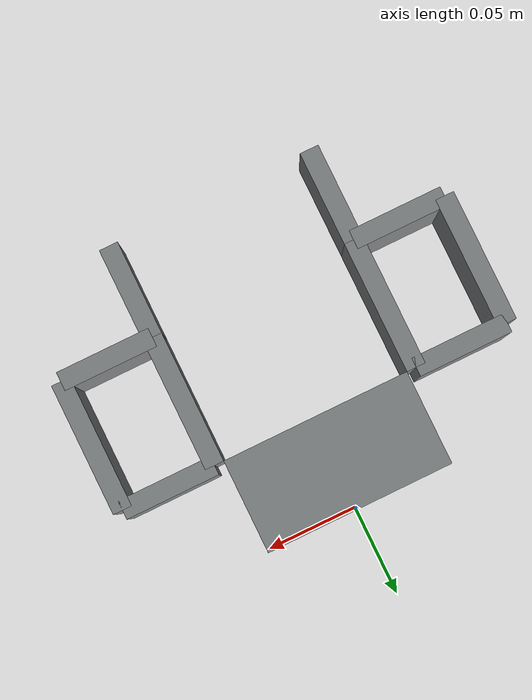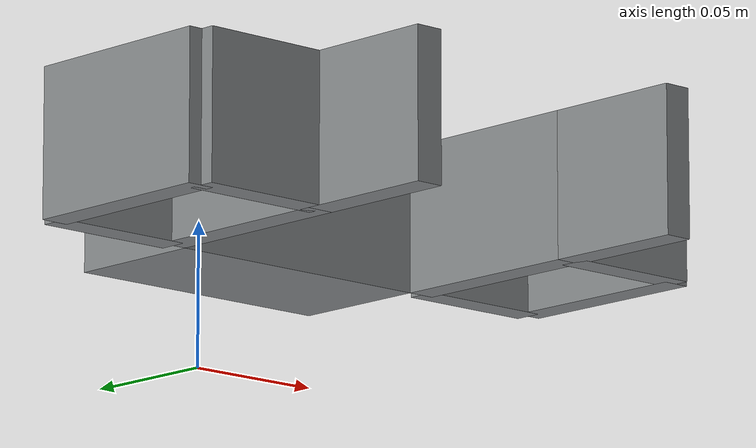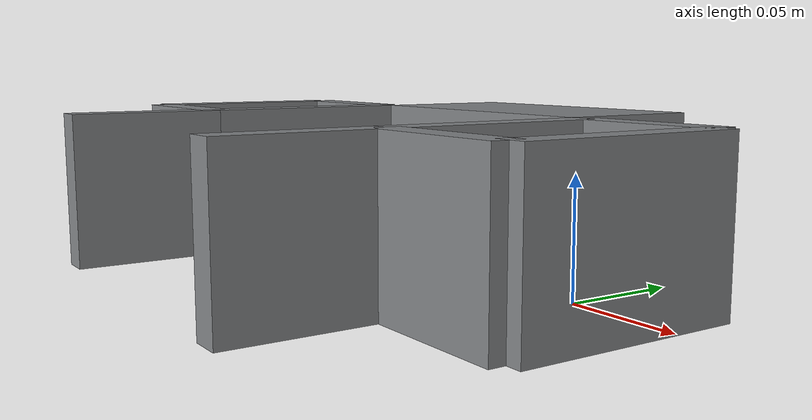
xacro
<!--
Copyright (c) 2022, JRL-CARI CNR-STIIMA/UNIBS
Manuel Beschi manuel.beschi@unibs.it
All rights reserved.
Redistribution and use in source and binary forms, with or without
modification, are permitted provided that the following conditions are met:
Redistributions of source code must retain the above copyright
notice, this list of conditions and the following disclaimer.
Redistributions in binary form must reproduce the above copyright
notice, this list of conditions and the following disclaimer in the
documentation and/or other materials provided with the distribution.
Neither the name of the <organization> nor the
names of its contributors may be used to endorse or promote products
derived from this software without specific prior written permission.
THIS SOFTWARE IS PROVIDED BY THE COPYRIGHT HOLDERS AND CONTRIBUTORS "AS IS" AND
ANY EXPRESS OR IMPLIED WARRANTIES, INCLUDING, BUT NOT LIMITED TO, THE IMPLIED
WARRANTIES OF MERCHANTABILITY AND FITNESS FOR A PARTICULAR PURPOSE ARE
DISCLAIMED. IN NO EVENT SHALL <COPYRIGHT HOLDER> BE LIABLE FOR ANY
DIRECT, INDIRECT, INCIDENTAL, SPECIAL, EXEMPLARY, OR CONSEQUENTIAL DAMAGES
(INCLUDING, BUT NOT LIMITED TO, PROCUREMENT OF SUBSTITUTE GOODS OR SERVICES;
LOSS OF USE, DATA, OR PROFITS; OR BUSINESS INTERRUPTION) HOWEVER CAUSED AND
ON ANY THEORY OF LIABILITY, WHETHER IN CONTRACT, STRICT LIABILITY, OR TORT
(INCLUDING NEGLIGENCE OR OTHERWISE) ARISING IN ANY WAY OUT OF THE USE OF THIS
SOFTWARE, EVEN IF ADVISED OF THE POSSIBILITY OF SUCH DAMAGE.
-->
<?xml version="1.0" ?>

<robot name="gripper" xmlns:xacro="http://ros.org/wiki/xacro">
  <xacro:include filename="$(find parallel_2f_gripper)/urdf/gripper.xacro" />
  <xacro:gripper prefix=""/>

  <link name="world"/>
  <joint name="world_joint" type="fixed">
    <origin xyz="0 0 0.05" rpy="${pi*0.5} 0 0"/>
    <parent link="world" />
    <child link="gripper_base" />
  </joint>

  <gazebo>
    <plugin name="gazebo_ros_control" filename="libgazebo_ros_control.so">
      <robotNamespace>/gripper</robotNamespace>
      <robotSimType>gazebo_ros_control/DefaultRobotHWSim</robotSimType>
    </plugin>
  </gazebo>

</robot>

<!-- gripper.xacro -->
<robot xmlns:xacro="http://ros.org/wiki/xacro">
  <xacro:macro name="gripper" params="prefix">
  <xacro:include filename="$(find parallel_2f_gripper)/urdf/box.xacro" />
  <xacro:include filename="$(find parallel_2f_gripper)/urdf/finger.xacro" />
  <xacro:include filename="$(find parallel_2f_gripper)/urdf/transmission.xacro" />
  <xacro:property name="base_x" value="0.1" />
  <xacro:property name="base_z" value="0.05" />
  <xacro:property name="link_width" value="0.01" />
  <xacro:property name="link_height" value="0.05" />
  <xacro:property name="crank_length" value="0.07" />
  <xacro:property name="phalanx_length" value="0.05" />
  <xacro:property name="rod_length" value="0.05" />

  <xacro:box name="gripper_base" width="${base_x}" height="${link_height}" length="${base_z}"/>

  <link name="${prefix}open_tip"/>
  <joint name="${prefix}open_tip_joint" type="fixed">
    <origin xyz="0 0 ${cos(1)*crank_length+base_z+phalanx_length}" rpy="0 0 0"/>
    <parent link="${prefix}gripper_base" />
    <child link="${prefix}open_tip" />
  </joint>

  <link name="${prefix}closed_tip"/>
  <joint name="${prefix}closed_tip_joint" type="fixed">
    <origin xyz="0 0 ${cos(asin(0.5*base_x/crank_length))*crank_length+base_z+phalanx_length}" rpy="0 0 0"/>
    <parent link="${prefix}gripper_base" />
    <child link="${prefix}closed_tip" />
  </joint>

    <link name="${prefix}zero_pos_tip"/>
    <joint name="${prefix}zero_pos_tip_joint" type="fixed">
      <origin xyz="0 0 ${crank_length+base_z+phalanx_length}" rpy="0 0 0"/>
      <parent link="${prefix}gripper_base" />
      <child link="${prefix}zero_pos_tip" />
    </joint>

  <xacro:finger
    prefix        ="${prefix}right_"
    base_name     ="${prefix}gripper_base"
    link_width    ="${link_width}"
    link_height   ="${link_height}"
    crank_length  ="${crank_length}"
    rod_length    ="${rod_length}"
    phalanx_length ="${phalanx_length}"
    base_x        ="${base_x}"
    base_z        ="${base_z}"
    mimic_joint   =""
    rot_z         ="0"
  />

  <xacro:finger
    prefix        ="${prefix}left_"
    base_name     ="${prefix}gripper_base"
    link_width    ="${link_width}"
    link_height   ="${link_height}"
    crank_length  ="${crank_length}"
    rod_length    ="${rod_length}"
    phalanx_length ="${phalanx_length}"
    base_x        ="${base_x}"
    base_z        ="${base_z}"
    mimic_joint   ="right_finger_joint"
    rot_z         ="${pi}"
  />
  <gazebo>
    <!-- gearbox between the two finger (like mimic for URDF) -->
    <joint name="${prefix}left_right" type="gearbox">
     <parent>${prefix}right_crank</parent>
     <child>${prefix}left_crank</child>

     <!-- movements are computed between:
     - parent and gearbox_reference_body
     - child and gearbox_reference_body
     -->
     <gearbox_reference_body>${prefix}gripper_base</gearbox_reference_body>
     <!-- the movement has already a negative sign -->
     <gearbox_ratio>1</gearbox_ratio>
     <!-- pose does not care -->
     <pose relative_to="gripper_base">0 0 0 0 0 0</pose>
     <axis>
       <xyz>0 1 0</xyz>
     </axis>
   </joint>
  </gazebo>

  <xacro:transmission prefix="${prefix}right_"/>

  </xacro:macro>
</robot>

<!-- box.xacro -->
<robot xmlns:xacro="http://ros.org/wiki/xacro">
  <xacro:macro name="box" params="name length width height">
    <link name="${name}">
      <inertial>
        <origin xyz="0 0 0" rpy="0 0 0" />
        <mass value="0.2" />
        <inertia ixx="0.001" ixy="0.0" ixz="0.0" iyy="0.001" iyz="0.0" izz="0.001" />
      </inertial>
      <visual>
        <origin xyz="0 0 ${0.5*length}" rpy="0 0 0" />
        <geometry>
          <box size="${width} ${height} ${length}"/>
        </geometry>
        <material name="aluminium">
          <color rgba="${132/256} ${135/256} ${137/256} 1" />
        </material>
      </visual>
      <collision>
        <origin xyz="0 0 ${0.5*length}" rpy="0 0 0" />
        <geometry>
          <box size="${width} ${height} ${length}"/>
        </geometry>
        <material name="aluminium">
          <color rgba="${132/256} ${135/256} ${137/256} 1" />
        </material>
      </collision>
    </link>
  </xacro:macro>
</robot>

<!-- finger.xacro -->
<robot xmlns:xacro="http://ros.org/wiki/xacro">
  <xacro:macro name="finger" params="prefix base_name link_width link_height crank_length rod_length phalanx_length base_x base_z mimic_joint rot_z">
    <xacro:include filename="$(find parallel_2f_gripper)/urdf/box.xacro" />
    <xacro:include filename="$(find parallel_2f_gripper)/urdf/transmission.xacro" />
    <xacro:box name="${prefix}crank"  width="${link_width}" height="${link_height}" length="${crank_length}"/>
    <xacro:box name="${prefix}external_crank"  width="${link_width}" height="${link_height}" length="${crank_length}"/>
    <xacro:box name="${prefix}rod"  width="${link_width}" height="${link_height}" length="${rod_length}"/>
    <xacro:box name="${prefix}base_rod"  width="${link_width}" height="${link_height}" length="${rod_length}"/>
    <xacro:box name="${prefix}phalanx"     width="${link_width}" height="${link_height}" length="${phalanx_length}"/>

    <joint name="${prefix}finger_joint" type="revolute">
      <origin xyz="${0.5*(base_x+link_width)*cos(rot_z)} 0 ${base_z}" rpy="0 0 ${rot_z}"/>
      <parent link="${base_name}" />
      <child link="${prefix}crank" />
      <axis xyz="0 1 0" />
      <limit lower="${-asin(0.5*base_x/crank_length)}" upper="${1}" velocity="5.0" effort="50" />

      <xacro:unless value="${mimic_joint == ''}">
        <mimic joint="${mimic_joint}" multiplier="1" offset="0" />
      </xacro:unless>
    </joint>

    <joint name="${prefix}joint_2_5" type="fixed">
      <origin xyz="0 0 0" rpy="0 ${-pi/2} 0"/>
      <parent link="${prefix}rod" />
      <child link="${prefix}phalanx" />
      <axis xyz="0 1 0" />
    </joint>

      <joint name="${prefix}joint_1_2" type="revolute">
        <origin xyz="0 0 ${crank_length}" rpy="0 ${pi/2} 0"/>
        <parent link="${prefix}crank" />
        <child link="${prefix}rod" />
        <axis xyz="0 1 0" />
        <limit lower="${-pi}" upper="${pi}" velocity="2.0" effort="10" />
        <mimic joint="${prefix}finger_joint" multiplier="-1" offset="0" />
      </joint>

      <joint name="${prefix}joint_2_3" type="revolute">
        <origin xyz="0 0 ${rod_length}" rpy="0 ${pi/2} 0"/>
        <parent link="${prefix}rod" />
        <child link="${prefix}external_crank" />
        <axis xyz="0 1 0" />
        <limit lower="${-pi}" upper="${pi}" velocity="2.0" effort="10" />
        <mimic joint="${prefix}finger_joint" multiplier="1" offset="0" />
      </joint>

        <joint name="${prefix}joint_3_4" type="revolute">
          <origin xyz="0 0 ${crank_length}" rpy="0 ${pi/2} 0"/>
          <parent link="${prefix}external_crank" />
          <child link="${prefix}base_rod" />
          <axis xyz="0 1 0" />
          <limit lower="${-pi}" upper="${pi}" velocity="2.0" effort="10" />
          <mimic joint="${prefix}finger_joint" multiplier="-1" offset="0" />
        </joint>

        <link name="${prefix}tip"/>
        <joint name="${prefix}tip_joint" type="fixed">
          <origin xyz="${-0.5*link_width} 0 ${phalanx_length}" rpy="0 0 0"/>
          <parent link="${prefix}phalanx" />
          <child link="${prefix}tip" />
        </joint>

      <gazebo>
        <joint name="${prefix}joint_4_1" type="revolute">
         <parent>${prefix}base_rod</parent>
         <child>${prefix}crank</child>
         <pose relative_to="${prefix}base_rod">0 0 ${rod_length}   0 ${pi/2} 0</pose>
         <axis>
           <xyz>0 1 0</xyz>
         </axis>
       </joint>

       <joint name="${prefix}joint_0_4" type="revolute">
        <parent>${base_name}</parent>
        <child>${prefix}base_rod</child>
        <pose relative_to="${base_name}">${(0.5*(base_x+link_width)+rod_length)*cos(rot_z)} 0 ${base_z} 0 0 ${rot_z}</pose>
        <axis>
          <xyz>0 1 0</xyz>
        </axis>
      </joint>
      </gazebo>

      <gazebo reference="${prefix}phalanx">
        <self_collide>1</self_collide>
        <kp>100000</kp>
        <kd>200</kd>
        <mu1>2</mu1>
        <mu2>2</mu2>
      </gazebo>

    </xacro:macro>
</robot>
